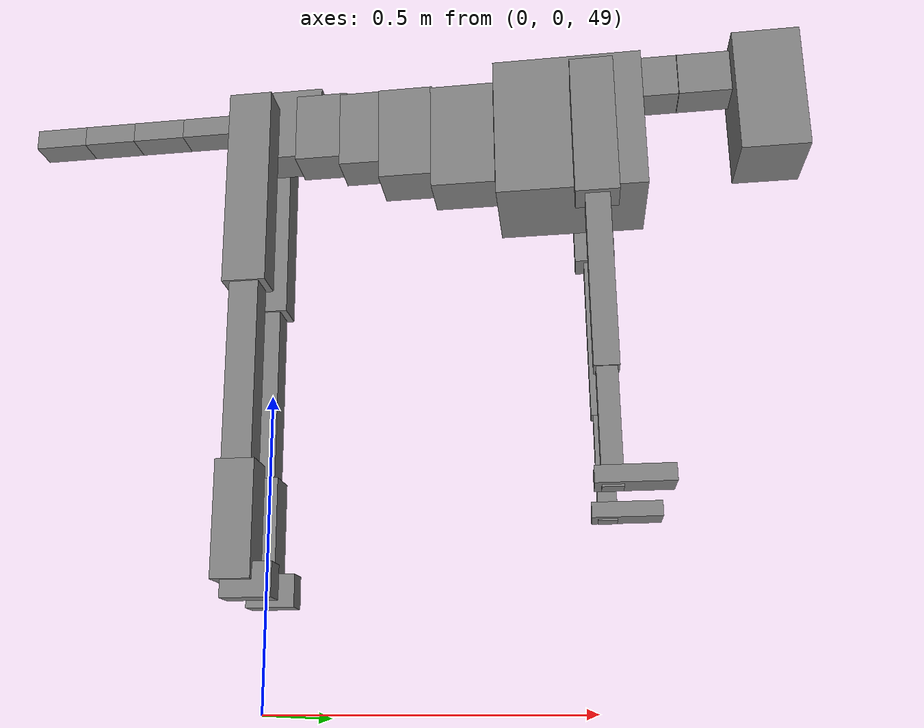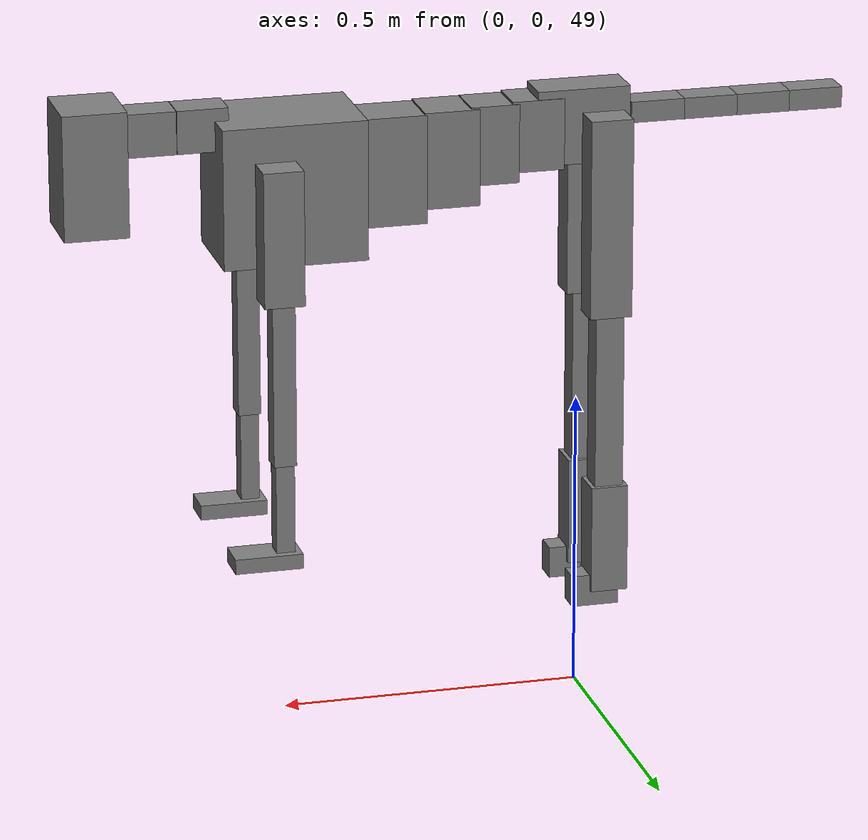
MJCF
<mujoco model="dog">

    <default>
        <joint armature="0.02" stiffness="1" damping="0.2" limited="true"/>
        <geom condim="3" friction="1 0.05 0.05" margin="0.01"/>
        <motor ctrllimited="true" ctrlrange="-1.0 1.0" forcelimited="true" gear="50"/>
    </default>

    <compiler inertiafromgeom="true" angle="radian"/>

    <option timestep="0.016" iterations="50" tolerance="1e-10" solver="Newton" jacobian="dense" cone="pyramidal"/>

    <size nconmax="20000" njmax="60000" nstack="5000000"/>
    <visual>
        <map force="0.1" zfar="30"/>
        <rgba haze="0.15 0.25 0.35 1"/>
        <quality shadowsize="2048"/>
        <global offwidth="800" offheight="800"/>
    </visual>

    <asset>
        <texture type="skybox" builtin="gradient" rgb1="0.3 0.5 0.7" rgb2="0 0 0" width="512" height="512"/>
        <texture name="texplane" type="2d" builtin="checker" rgb1=".2 .3 .4" rgb2=".1 0.15 0.2" width="512" height="512"
                 mark="cross" markrgb=".8 .8 .8"/>
        <texture name="texgeom" type="cube" builtin="flat" mark="cross" width="127" height="1278" rgb1="0.8 0.6 0.4"
                 rgb2="0.8 0.6 0.4" markrgb="1 1 1" random="0.01"/>

        <material name="matplane" reflectance="0.3" texture="texplane" texrepeat="1 1" texuniform="true"/>
        <material name="matgeom" texture="texgeom" texuniform="true" rgba="0.8 0.6 .4 1"/>
    </asset>

    <worldbody>
        <geom name="floor" pos="0 0 0" size="0 0 .25" type="plane" material="matplane" condim="3"/>

        <light directional="false" diffuse=".2 .2 .2" specular="0 0 0" pos="0 0 5" dir="0 0 -1" castshadow="false"/>
        <light mode="targetbodycom" target="torso" directional="false" diffuse=".8 .8 .8" specular="0.3 0.3 0.3"
               pos="0 0 4.0" dir="0 0 -1"/>

        <body name="root" pos="0 0 50">
            <freejoint name="root_1"/>
            <geom type="box" pos="0 0 -0.02" size="0.0774  0.0358  0.063" density="2030"/>

            <body name="spine1" pos="0.054 0 0">
                <joint name="spine1_y" axis="0 1 0" range="0 0.7" limited="true"/>
                <geom type="box" pos="0.02375 0 -0.03" size="0.04375  0.0375  0.05985" density="2030"/>

                <body name="spine2" pos="0.0612 0 0">
                    <joint name="spine2_y" axis="0 1 0" range="-0.15 0.15" limited="true"/>
                    <geom type="box" pos="0.03555  0  -0.04" size="0.04055  0.039  0.06615" density="2030"/>

                    <body name="spine3" pos="0.0730 0 0">
                        <joint name="spine3_y" axis="0 1 0" range="-0.15 0.15" limited="true"/>
                        <geom type="box" pos="0.03555  0  -0.057" size="0.04555  0.0445  0.081" density="2030"/>

                        <body name="spine4" pos="0.0780 0 0">
                            <joint name="spine4_y" axis="0 1 0" range="-0.15 0.15" limited="true"/>
                            <geom type="box" pos="0.05265  0  -0.07" size="0.05265  0.045  0.09135" density="2030"/>

                            <body name="torso" pos="0.1082 0 0">
                                <joint name="torso_y" axis="0 1 0" range="-0.15 0.15" limited="true"/>
                                <geom type="box" pos="0.11925  0  -0.085" size="0.11925  0.085  0.11745"
                                      density="2030"/>

                                <body name="neck1" pos="0.2160  0   0.0180">
                                    <joint name="neck1_y" axis="0 1 0" range="-1.2  -1" limited="true"/>
                                    <geom type="box" pos="0.0423  0  0" size="0.0423  0.03  0.036" density="2325"/>

                                    <body name="neck2" pos="0.0853  0  0">
                                        <joint name="neck2_y" axis="0 1 0" range="0.1  0" limited="true"/>
                                        <geom type="box" pos="0.0423  0  0" size="0.0423  0.03  0.036" density="2325"/>

                                        <body name="head" pos="0.0853  0  0">
                                            <joint name="head_y" axis="0 1 0" range="-0.3  -0.2" limited="true"/>
                                            <geom type="box" pos="0.0531  0  -0.055" size="0.0531  0.06  0.1044"
                                                  density="4030"/>

                                        </body>
                                    </body>
                                </body>

                                <body name="front_shoulder" pos="0.156  0   -0.0480">
                                    <joint name="front_shoulder_y" axis="0 1 0" range="-1 1.5" limited="true"/>
                                    <geom type="box" pos="0 0.13 -0.0862" size="0.0333  0.0284  0.1129" density="1158"/>
                                    <geom type="box" pos="0 -0.13 -0.0862" size="0.0333  0.0284  0.1129"
                                          density="1158"/>

                                    <body name="front_elbow" pos="0  0  -0.1725">
                                        <joint name="front_elbow_y" axis="0 1 0" range="-2 0" limited="true"/>
                                        <geom type="box" pos="0 0.13 -0.1498" size="0.0188  0.0192  0.1498"
                                              density="1081"/>
                                        <geom type="box" pos="0 -0.13 -0.1498" size="0.0188  0.0192  0.1498"
                                              density="1081"/>

                                        <body name="front_wrist" pos="0  0  -0.2996">
                                            <joint name="front_wrist_y" axis="0 1 0" range="-0.2 0" limited="true"/>
                                            <geom type="box" pos="0 0.13 -0.0818" size="0.0155  0.0172  0.0949"
                                                  density="1664"/>
                                            <geom type="box" pos="0 -0.13 -0.0818" size="0.0155  0.0172  0.0949"
                                                  density="1664"/>

                                            <body name="front_finger_end" pos="0  0  -0.1636">
                                                <joint name="front_finger_y" axis="0 1 0" range="-0.4 1"
                                                       limited="true"/>
                                                <geom type="box" pos="0.0308  0.13  0.0025"
                                                      size="0.0564  0.0308  0.0125" density="1515"/>
                                                <geom type="box" pos="0.0308  -0.13  0.0025"
                                                      size="0.0564  0.0308  0.0125" density="1515"/>

                                            </body>

                                        </body>
                                    </body>
                                </body>

                            </body>
                        </body>
                    </body>
                </body>
            </body>

            <body name="back_hip" pos="-0.03 0 -0.018">
                <joint name="back_hip_y" axis="0 1 0" range="-1.5 0.3" limited="true"/>
                <geom type="box" pos="0 0.07 -0.1455" size="0.0354  0.0278  0.1683" density="1154"/>
                <geom type="box" pos="0 -0.07 -0.1455" size="0.0354  0.0278  0.1683" density="1154"/>

                <body name="back_knee" pos="0  0  -0.2910">
                    <joint name="back_knee_y" axis="0 1 0" range="0 2.8" limited="true"/>
                    <geom type="box" pos="0 0.07 -0.1635" size="0.0238  0.0235  0.1790" density="1227"/>
                    <geom type="box" pos="0 -0.07 -0.1635" size="0.0238  0.0235  0.1790" density="1227"/>

                    <body name="back_ankle" pos="0  0  -0.3270">
                        <joint name="back_ankle_y" axis="0 1 0" range="-2.2 0" limited="true"/>
                        <geom type="box" pos="0 0.07 -0.0799" size="0.0309  0.0309  0.0912" density="1284"/>
                        <geom type="box" pos="0 -0.07 -0.0799" size="0.0309  0.0309  0.0912" density="1284"/>

                        <body name="back_toe_end" pos="0  0  -0.1599">
                            <joint name="back_toe_y" axis="0 1 0" range="-0.4 1" limited="true"/>
                            <geom type="box" pos="0.0215  0.07  -0.0115" size="0.0395  0.0215  0.0265" density="1515"/>
                            <geom type="box" pos="0.0215  -0.07  -0.0115" size="0.0395  0.0215  0.0265" density="1515"/>

                        </body>
                    </body>
                </body>
            </body>

            <body name="tail1" pos="-0.074 0 -0.006">
                <joint name="tail1_y" axis="0 1 0" range="-0.2 0.2" limited="true"/>
                <geom type="box" pos="-0.0536  0  0" size="0.045  0.025  0.0175" density="1587"/>

                <body name="tail2" pos="-0.09 0 0">
                    <joint name="tail2_y" axis="0 1 0" range="-0.2 0.2" limited="true"/>
                    <geom type="box" pos="-0.0536  0  0" size="0.045  0.025  0.0175" density="1587"/>

                    <body name="tail3" pos="-0.09 0 0">
                        <joint name="tail3_y" axis="0 1 0" range="-0.2 0.2" limited="true"/>
                        <geom type="box" pos="-0.0536  0  0" size="0.045  0.025  0.0175" density="1587"/>

                        <body name="tail4" pos="-0.09 0 0">
                            <joint name="tail4_y" axis="0 1 0" range="-0.2 0.2" limited="true"/>
                            <geom type="box" pos="-0.0536  0  0" size="0.045  0.025  0.0175" density="1587"/>

                        </body>
                    </body>
                </body>
            </body>
        </body>
    </worldbody>

    <actuator>
        <motor joint="spine1_y" forcerange="-150 150     "/>
        <motor joint="spine2_y" forcerange="-150 150     "/>
        <motor joint="spine3_y" forcerange="-150 150     "/>
        <motor joint="spine4_y" forcerange="-150 150     "/>
        <motor joint="torso_y" forcerange="-150 150     "/>
        <motor joint="neck1_y" forcerange="-100 100       "/>
        <motor joint="neck2_y" forcerange="-100 100       "/>
        <motor joint="head_y" forcerange="-150 150       "/>
        <motor joint="front_shoulder_y" forcerange="-105.27 184.29"/>
        <motor joint="front_elbow_y" forcerange="-105.51 134.33"/>
        <motor joint="front_wrist_y" forcerange="-52.07 85.59"/>
        <motor joint="front_finger_y" forcerange="-91.48 32.64"/>
        <motor joint="back_hip_y" forcerange="-294.09 276.08"/>
        <motor joint="back_knee_y" forcerange="-266.91 274.81"/>
        <motor joint="back_angle_y" forcerange="-247.85 147.34"/>
        <motor joint="back_toe_y" forcerange="-45.38 46.99"/>
        <motor joint="tail1_y" forcerange="-50 50     "/>
        <motor joint="tail2_y" forcerange="-50 50     "/>
        <motor joint="tail3_y" forcerange="-50 50     "/>
        <motor joint="tail4_y" forcerange="-50 50     "/>
    </actuator>
</mujoco>
